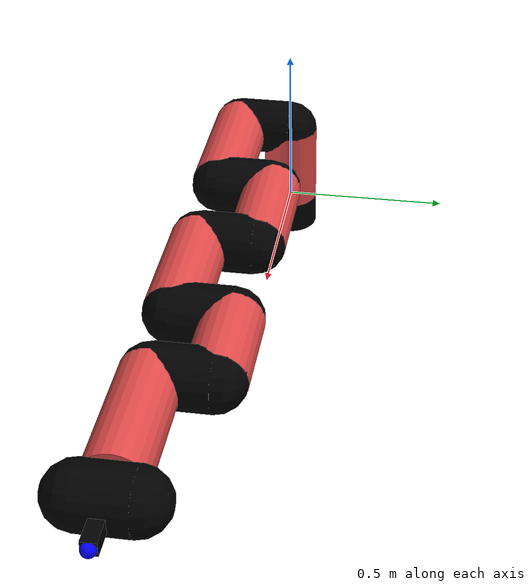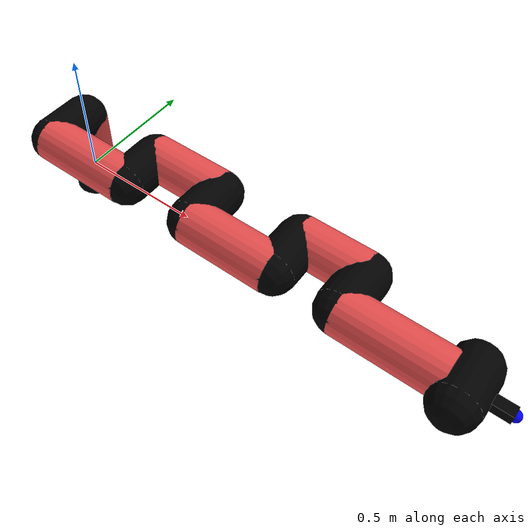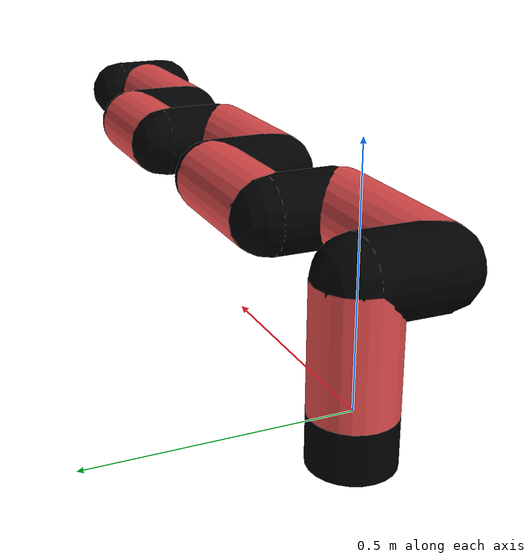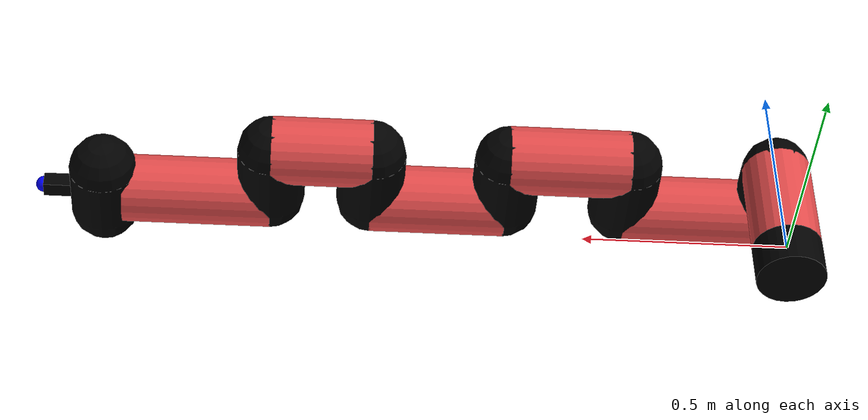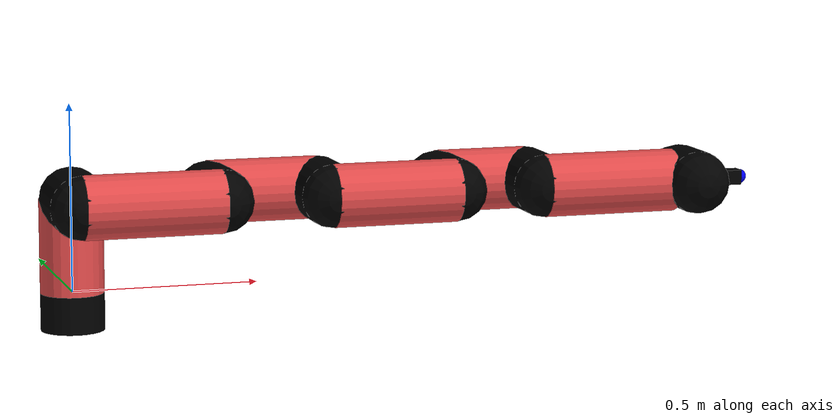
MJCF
<mujoco model="manipulator">
		<compiler angle="degree" coordinate="local" inertiafromgeom="auto" meshdir="meshes/"/>
		<option gravity="0 0 0" integrator="RK4" iterations="30" timestep="0.01"/>

		<default>
		<joint armature="1" limited="true" stiffness="10" damping="15" frictionloss="5.0"/>
		<geom conaffinity="1" condim="3" contype="1" friction=".5 .1 .1" margin="0.002"/>
		<motor ctrllimited="true"/>
		<position ctrllimited="true"/>
		</default>

		<asset>
		<texture builtin="gradient" height="100" rgb1="1.0 1.0 1.0" rgb2="1.0 1.0 1.0" type="skybox" width="100"/>
		<texture builtin="flat" height="32" name="arm_tex" rgb1="0.9 0.3 0.3" type="2d" width="32"/>
		<texture builtin="flat" height="32" name="gripper_tex" rgb1="0.0 0.0 0.0" type="cube" width="32"/>

		<material name="arm_mat" shininess="0.1" specular="0.1" texture="arm_tex"/>
		<material name="gripper_mat" shininess="1" specular="1" texture="gripper_tex"/>
		</asset>

		<worldbody>
		<light cutoff="45" diffuse=".8 .8 .8" dir="0 0.16 -1" directional="false" name="light" pos="0 -2.0 8.0" specular="0.3 0.3 0.3"/>

		<body name="base_link" pos="0 0 -0.1">
		<geom fromto="0 0 0 0 0 0.1" material="arm_mat" name="base_link" rgba="0.0 0.0 0.0 1" size="0.085" type="cylinder"/>
		</body>

		<body name="l1" pos="0 0 0">
<geom fromto="0 0 0 0 0 0.25" material="arm_mat" name="l1" rgba="0.9 0.3 0.3 1" size="0.085" type="cylinder"/>
<geom fromto="0 0 0.25 0 -0.16 0.25" material="arm_mat" name="l1_ex" rgba="0.0 0.0 0.0 1" size="0.085" type="capsule"/>
<joint axis="0 0 1" name="j1" pos="0 0 0" range="-90 90" damping="24.74" frictionloss="12.32"/>

<body name="l2" pos="0 -0.16 0.25">
<geom fromto="0 0 0 0.37 0 0" material="arm_mat" name="l2" rgba="0.9 0.3 0.3 1" size="0.085" type="cylinder"/>
<geom fromto="0.37 0 0 0.37 0.16 0" material="arm_mat" name="l2_ex" rgba="0.0 0.0 0.0 1" size="0.085" type="capsule"/>
<joint axis="0.0 1.0 0.0" name="j2" pos="0 0 0" range="-90 60" damping="35.95" frictionloss="10.14"/>

<body name="l3" pos="0.37 0.16 0">
<geom fromto="0 0 0 0.3 0 0" material="arm_mat" name="l3" rgba="0.9 0.3 0.3 1" size="0.085" type="cylinder"/>
<geom fromto="0.3 0 0 0.3 -0.16 0" material="arm_mat" name="l3_ex" rgba="0.0 0.0 0.0 1" size="0.085" type="capsule"/>
<joint axis="0.0 1.0 0.0" name="j3" pos="0 0 0" range="-30 60" damping="34.26" frictionloss="8.01"/>

<body name="l4" pos="0.3 -0.16 0">
<geom fromto="0 0 0 0.34 0 0" material="arm_mat" name="l4" rgba="0.9 0.3 0.3 1" size="0.085" type="cylinder"/>
<geom fromto="0.34 0 0 0.34 0.16 0" material="arm_mat" name="l4_ex" rgba="0.0 0.0 0.0 1" size="0.085" type="capsule"/>
<joint axis="0.0 1.0 0.0" name="j4" pos="0 0 0" range="-30 60" damping="35.67" frictionloss="8.62"/>

<body name="l5" pos="0.34 0.16 0">
<geom fromto="0 0 0 0.25 0 0" material="arm_mat" name="l5" rgba="0.9 0.3 0.3 1" size="0.085" type="cylinder"/>
<geom fromto="0.25 0 0 0.25 -0.16 0" material="arm_mat" name="l5_ex" rgba="0.0 0.0 0.0 1" size="0.085" type="capsule"/>
<joint axis="0.0 1.0 0.0" name="j5" pos="0 0 0" range="-30 60" damping="31.1" frictionloss="8.03"/>

<body name="l6" pos="0.25 -0.16 0">
<geom fromto="0 0 0 0.37 0 0" material="arm_mat" name="l6" rgba="0.9 0.3 0.3 1" size="0.085" type="cylinder"/>
<joint axis="0.0 1.0 0.0" name="j6" pos="0 0 0" range="-30 60" damping="26.93" frictionloss="8.33"/>

<body name="gripper" pos="0.37 0 0">
<geom fromto="0.05 -0.07 0 0.05 0.07 0" material="gripper_mat" name="gripper" rgba="0.0 0.0 0.0 1" size="0.085" type="capsule"/><joint axis="1 0 0" name="j7" pos="0 0 0" range="-90 90" damping="15" frictionloss="5.0"/><body name="finger" pos="0.1 0 0">
<geom fromto="0 0.0 0 0.1 0.0 0" material="gripper_mat" name="finger" rgba="0.0 0.0 0.0 1" size="0.020 0.06 0.06" type="box"/>
</body>
<site name="current" pos="0.2 0. 0.0" rgba="0. 0. 1.0 1" size="0.02" type="sphere"/>
</body>
</body>
</body>
</body>
</body>
</body>
</body>
</worldbody>
<actuator>
<motor ctrllimited="true" ctrlrange="-1.0 1.0" joint="j1" gear="68.92"/>
<motor ctrllimited="true" ctrlrange="-1.0 1.0" joint="j2" gear="73.67"/>
<motor ctrllimited="true" ctrlrange="-1.0 1.0" joint="j3" gear="87.35"/>
<motor ctrllimited="true" ctrlrange="-1.0 1.0" joint="j4" gear="85.26"/>
<motor ctrllimited="true" ctrlrange="-1.0 1.0" joint="j5" gear="93.91"/>
<motor ctrllimited="true" ctrlrange="-1.0 1.0" joint="j6" gear="102.26"/>
<motor ctrllimited="true" ctrlrange="-1.0 1.0" joint="j7" gear="80"/>
</actuator>
</mujoco>
